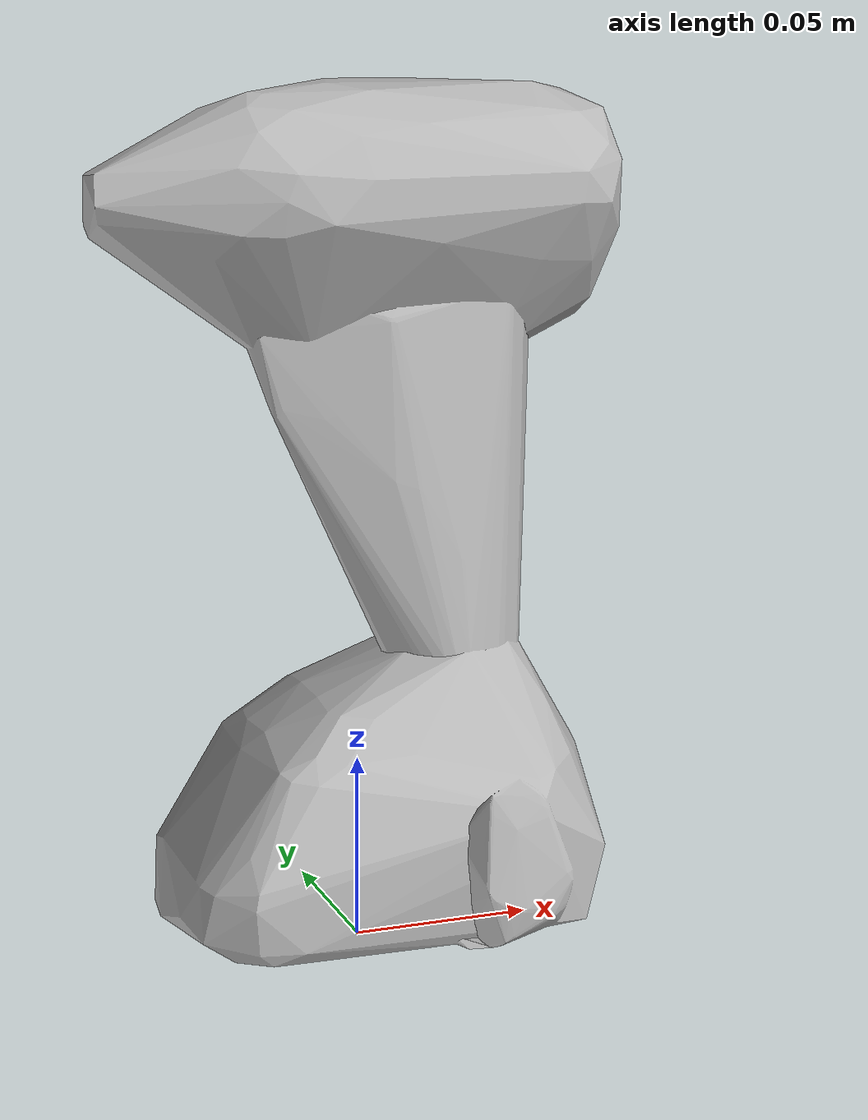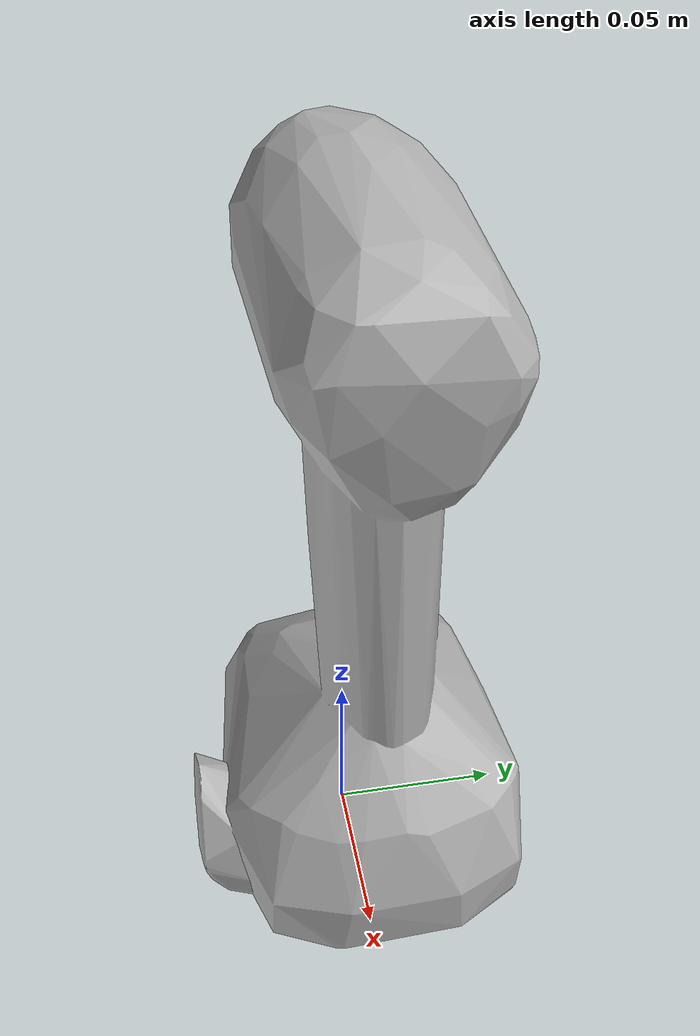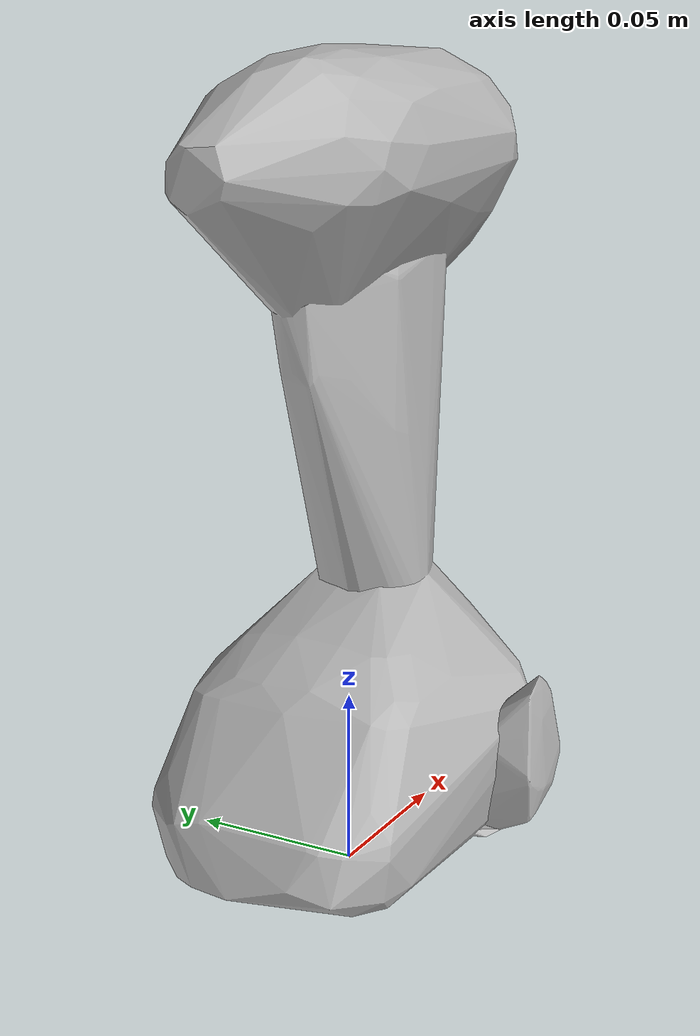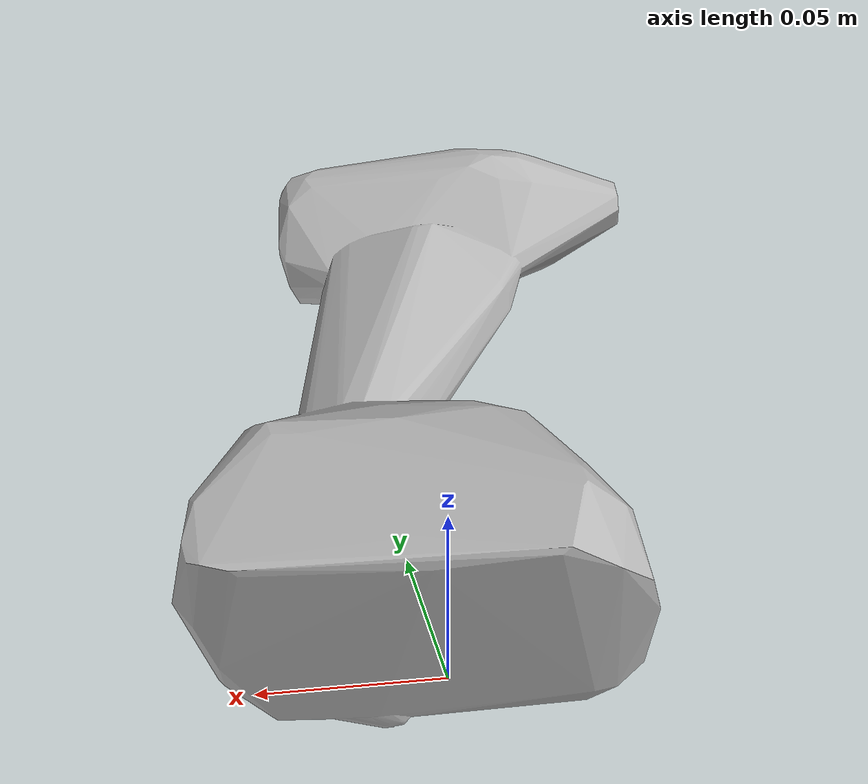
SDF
<?xml version="1.0" ?>
<sdf version="1.4">
  <model name="driller_small">
    <!-- Initial pose a bit higher than min bounding box z -->
    <pose>0 0 0.1185  0 0 0</pose>
    <static>false</static>
    <link name="body">
      <inertial>
        <pose>0.011875 0.003744 -0.013060  0 0 0</pose>
        <!-- POSE IS CENTER OF MASS -->
        <mass>1.1</mass>
        <inertia>
          <!-- GET THIS VALUE WITH MESHLAB - COMPUTE GEOMETRIC FEATURES ON x10 scaled mesh -->
          <ixx> 5.40211e-3</ixx>
          <ixy>-0.00000e-3</ixy>
          <ixz>-0.0e-3</ixz>
          <iyy> 5.84891e-3</iyy>
          <iyz>-0.00000e-3</iyz>
          <izz> 0.96616e-3</izz>
        </inertia>
      </inertial>
      <visual name="visual">
        <cast_shadows>true</cast_shadows>
        <geometry>
         <mesh>
           <uri>package://costar_objects/sdf/driller_small/meshes/driller_small.obj</uri>
         </mesh>
        </geometry>
      </visual>
      <collision name="collision">
        <surface>
          <friction>
            <ode>
              <mu>0.3</mu>
              <mu2>0.3</mu2>
            </ode>
          </friction>
        </surface>
        <geometry>
         <mesh>
           <uri>package://costar_objects/sdf/driller_small/meshes/driller_small_simplified.stl</uri>
         </mesh>
        </geometry>
      </collision>
    </link>
  </model>
</sdf>
